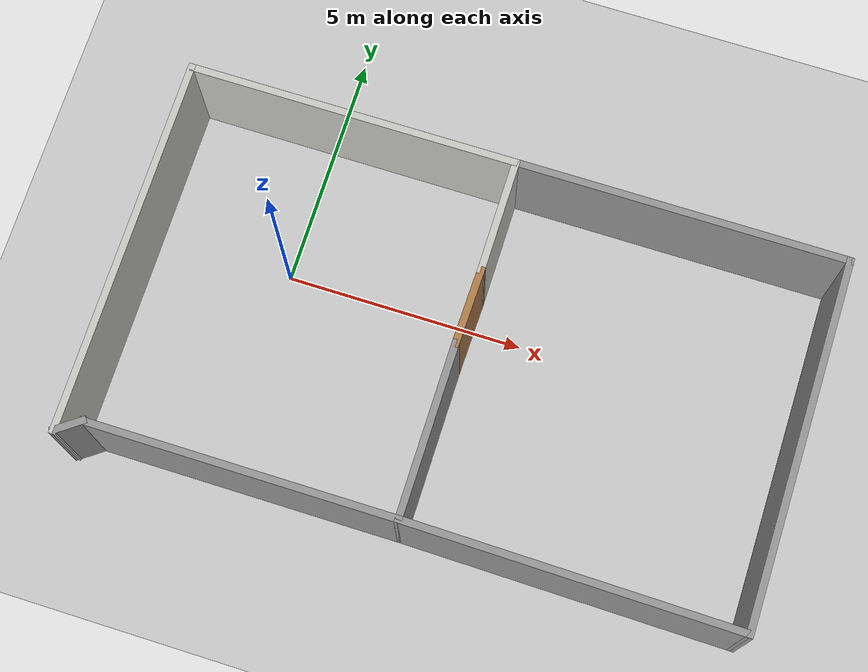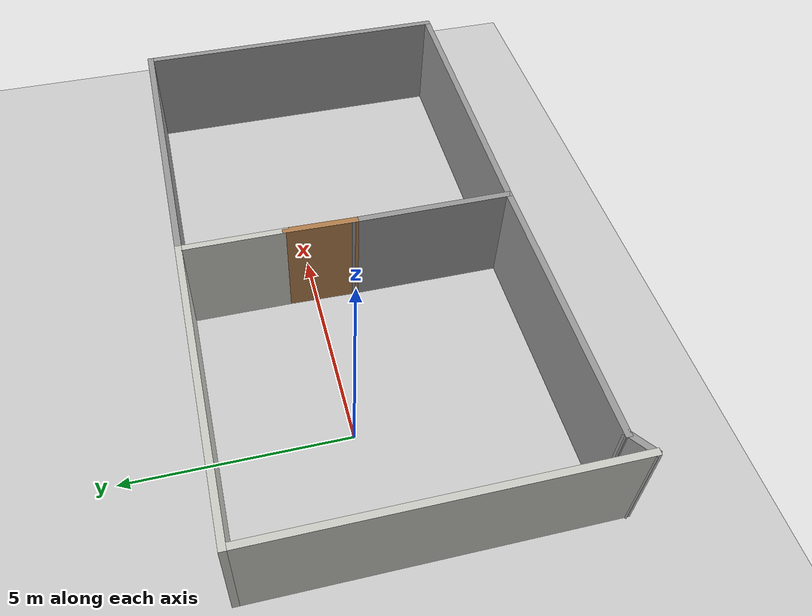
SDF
<sdf version="1.7">
 <world name="default">
  <light name="sun" type="directional">
   <pose>0 0 10 0 -0 0</pose>
   <diffuse>0.8 0.8 0.8 1</diffuse>
   <specular>0.2 0.2 0.2 1</specular>
   <attenuation>
    <range>1000</range>
    <constant>0.9</constant>
    <linear>0.01</linear>
    <quadratic>0.001</quadratic>
   </attenuation>
   <direction>-0.5 0.1 -0.9</direction>
   <spot><inner_angle>0</inner_angle><outer_angle>0</outer_angle><falloff>0</falloff></spot>
  </light>
  <model name="ground_plane">
   <static>1</static>
   <link name="link">
    <collision name="collision">
     <geometry><plane><normal>0 0 1</normal><size>100 100</size></plane></geometry>
     <surface>
      <contact><collide_bitmask>65535</collide_bitmask></contact>
      <friction><ode><mu>100</mu><mu2>50</mu2></ode></friction>
     </surface>
    </collision>
    <visual name="visual">
     <cast_shadows>0</cast_shadows>
     <geometry><plane><normal>0 0 1</normal><size>100 100</size></plane></geometry>
     <material>
      <script><uri>file://media/materials/scripts/gazebo.material</uri><name>Gazebo/Grey</name></script>
     </material>
    </visual>
   </link>
  </model>
  <gravity>0 0 -9.8</gravity>
  <magnetic_field>6e-06 2.3e-05 -4.2e-05</magnetic_field>
  <atmosphere type="adiabatic"/>
  <physics type="ode">
   <max_step_size>0.001</max_step_size>
   <real_time_factor>1</real_time_factor>
   <real_time_update_rate>1000</real_time_update_rate>
  </physics>
  <scene><ambient>0.4 0.4 0.4 1</ambient><background>0.7 0.7 0.7 1</background><shadows>1</shadows></scene>
  <spherical_coordinates>
   <surface_model>EARTH_WGS84</surface_model>
   <latitude_deg>0</latitude_deg>
   <longitude_deg>0</longitude_deg>
   <elevation>0</elevation>
   <heading_deg>0</heading_deg>
  </spherical_coordinates>
  <model name="custom_model">
   <pose>3.92533 -0.964595 0 0 -0 0</pose>
   <link name="Wall_1">
    <collision name="Wall_1_Collision">
     <geometry><box><size>6.5 0.15 2.5</size></box></geometry>
     <pose>0 0 1.25 0 -0 0</pose>
    </collision>
    <visual name="Wall_1_Visual">
     <pose>0 0 1.25 0 -0 0</pose>
     <geometry><box><size>6.5 0.15 2.5</size></box></geometry>
     <material>
      <script><uri>file://media/materials/scripts/gazebo.material</uri><name>Gazebo/Grey</name></script>
      <ambient>1 1 1 1</ambient>
     </material>
     <meta><layer>0</layer></meta>
    </visual>
    <pose>-3.19196 -3.56873 0 0 -0 0</pose>
   </link>
   <link name="Wall_11">
    <collision name="Wall_11_Collision">
     <geometry><box><size>7 0.15 2.5</size></box></geometry>
     <pose>0 0 1.25 0 -0 0</pose>
    </collision>
    <visual name="Wall_11_Visual">
     <pose>0 0 1.25 0 -0 0</pose>
     <geometry><box><size>7 0.15 2.5</size></box></geometry>
     <material>
      <script><uri>file://media/materials/scripts/gazebo.material</uri><name>Gazebo/Grey</name></script>
      <ambient>1 1 1 1</ambient>
     </material>
     <meta><layer>0</layer></meta>
    </visual>
    <pose>3.4394 3.93989 0 0 -0 0</pose>
   </link>
   <link name="Wall_12">
    <collision name="Wall_12_Collision">
     <geometry><box><size>7.75 0.15 2.5</size></box></geometry>
     <pose>0 0 1.25 0 -0 0</pose>
    </collision>
    <visual name="Wall_12_Visual">
     <pose>0 0 1.25 0 -0 0</pose>
     <geometry><box><size>7.75 0.15 2.5</size></box></geometry>
     <material>
      <script><uri>file://media/materials/scripts/gazebo.material</uri><name>Gazebo/Grey</name></script>
      <ambient>1 1 1 1</ambient>
     </material>
     <meta><layer>0</layer></meta>
    </visual>
    <pose>6.8644 0.13989 0 0 -0 -1.5708</pose>
   </link>
   <link name="Wall_13">
    <collision name="Wall_13_Collision">
     <geometry><box><size>7.03196 0.15 2.5</size></box></geometry>
     <pose>0 0 1.25 0 -0 0</pose>
    </collision>
    <visual name="Wall_13_Visual">
     <pose>0 0 1.25 0 -0 0</pose>
     <geometry><box><size>7.03196 0.15 2.5</size></box></geometry>
     <material>
      <script><uri>file://media/materials/scripts/gazebo.material</uri><name>Gazebo/Grey</name></script>
      <ambient>1 1 1 1</ambient>
     </material>
     <meta><layer>0</layer></meta>
    </visual>
    <pose>3.42372 -3.61442 0 0 -0 3.12831</pose>
   </link>
   <link name="Wall_2">
    <collision name="Wall_2_Collision">
     <geometry><box><size>3.75 0.15 2.5</size></box></geometry>
     <pose>0 0 1.25 0 -0 0</pose>
    </collision>
    <visual name="Wall_2_Visual">
     <pose>0 0 1.25 0 -0 0</pose>
     <geometry><box><size>3.75 0.15 2.5</size></box></geometry>
     <material>
      <script><uri>file://media/materials/scripts/gazebo.material</uri><name>Gazebo/Grey</name></script>
      <ambient>1 1 1 1</ambient>
     </material>
     <meta><layer>0</layer></meta>
    </visual>
    <pose>-0.016957 -1.76873 0 0 -0 1.5708</pose>
   </link>
   <link name="Wall_4">
    <collision name="Wall_4_Collision">
     <geometry><box><size>2.5 0.15 2.5</size></box></geometry>
     <pose>0 0 1.25 0 -0 0</pose>
    </collision>
    <visual name="Wall_4_Visual">
     <pose>0 0 1.25 0 -0 0</pose>
     <geometry><box><size>2.5 0.15 2.5</size></box></geometry>
     <material>
      <script><uri>file://media/materials/scripts/gazebo.material</uri><name>Gazebo/CeilingTiled</name></script>
      <ambient>1 1 1 1</ambient>
     </material>
     <meta><layer>0</layer></meta>
    </visual>
    <pose>0.014396 2.76489 0 0 -0 1.5708</pose>
   </link>
   <link name="Wall_5">
    <collision name="Wall_5_Collision">
     <geometry><box><size>7 0.15 2.5</size></box></geometry>
     <pose>0 0 1.25 0 -0 0</pose>
    </collision>
    <visual name="Wall_5_Visual">
     <pose>0 0 1.25 0 -0 0</pose>
     <geometry><box><size>7 0.15 2.5</size></box></geometry>
     <material>
      <script><uri>file://media/materials/scripts/gazebo.material</uri><name>Gazebo/CeilingTiled</name></script>
      <ambient>1 1 1 1</ambient>
     </material>
     <meta><layer>0</layer></meta>
    </visual>
    <pose>-3.4106 3.93989 0 0 -0 3.14159</pose>
   </link>
   <link name="Wall_6">
    <collision name="Wall_6_Collision">
     <geometry><box><size>8 0.15 2.5</size></box></geometry>
     <pose>0 0 1.25 0 -0 0</pose>
    </collision>
    <visual name="Wall_6_Visual">
     <pose>0 0 1.25 0 -0 0</pose>
     <geometry><box><size>8 0.15 2.5</size></box></geometry>
     <material>
      <script><uri>file://media/materials/scripts/gazebo.material</uri><name>Gazebo/CeilingTiled</name></script>
      <ambient>1 1 1 1</ambient>
     </material>
     <meta><layer>0</layer></meta>
    </visual>
    <pose>-6.8356 0.01489 0 0 -0 -1.5708</pose>
   </link>
   <link name="Wall_7">
    <collision name="Wall_7_Collision">
     <geometry><box><size>0.729802 0.15 2.5</size></box></geometry>
     <pose>0 0 1.25 0 -0 0</pose>
    </collision>
    <visual name="Wall_7_Visual">
     <pose>0 0 1.25 0 -0 0</pose>
     <geometry><box><size>0.729802 0.15 2.5</size></box></geometry>
     <material>
      <script><uri>file://media/materials/scripts/gazebo.material</uri><name>Gazebo/Grey</name></script>
      <ambient>1 1 1 1</ambient>
     </material>
     <meta><layer>0</layer></meta>
    </visual>
    <pose>-6.60128 -3.73942 0 0 -0 0.629557</pose>
   </link>
   <link name="Wall_9">
    <collision name="Wall_9_Collision">
     <geometry><box><size>1.70894 0.15 2.5</size></box></geometry>
     <pose>0 0 1.25 0 -0 0</pose>
    </collision>
    <visual name="Wall_9_Visual">
     <pose>0 0 1.25 0 -0 0</pose>
     <geometry><box><size>1.70894 0.15 2.5</size></box></geometry>
     <material>
      <script><uri>file://media/materials/scripts/gazebo.material</uri><name>Gazebo/Wood</name></script>
      <ambient>1 1 1 1</ambient>
     </material>
     <meta><layer>0</layer></meta>
    </visual>
    <pose>-0.001281 0.81058 0 0 -0 -1.59091</pose>
   </link>
   <static>1</static>
  </model>
 </world>
</sdf>
